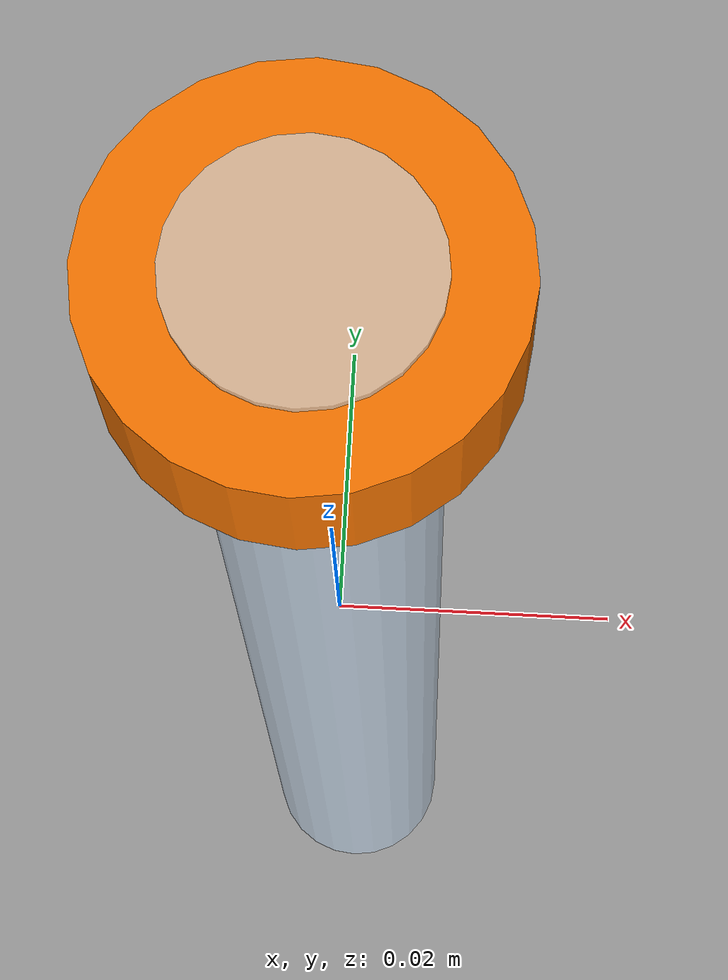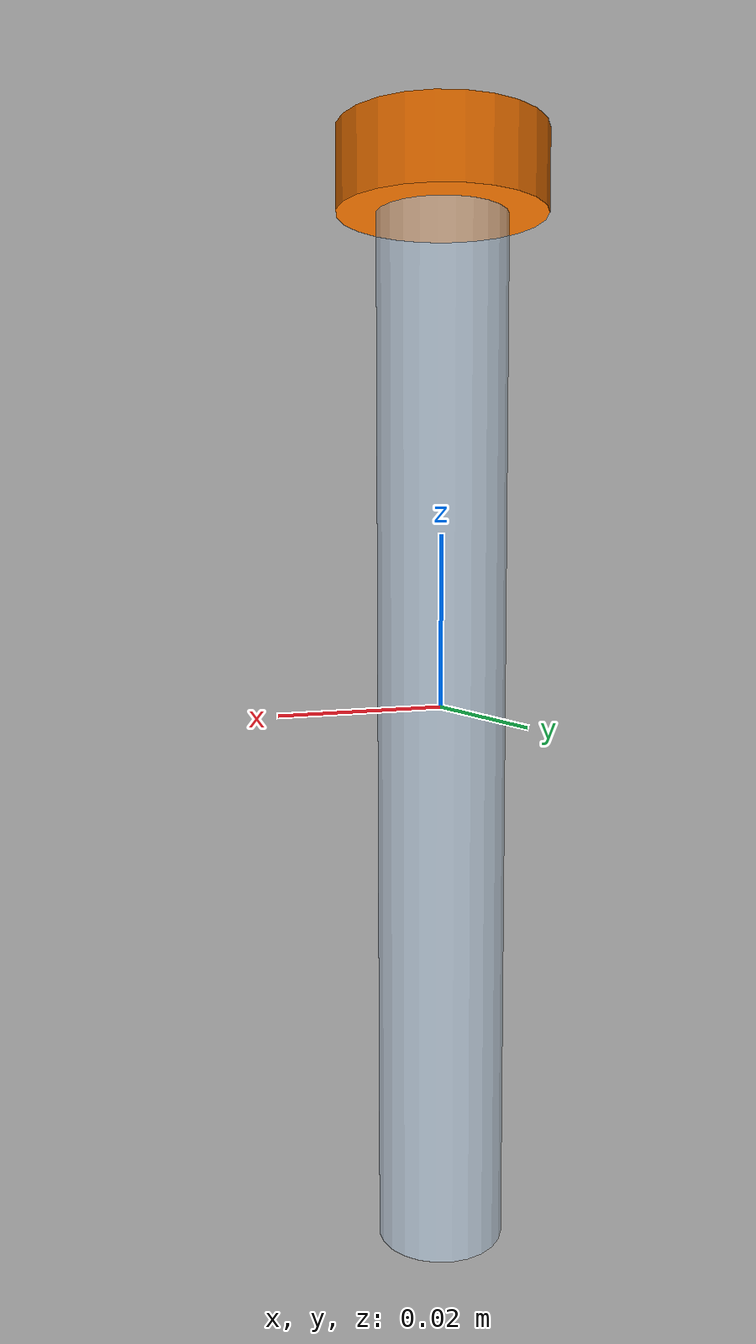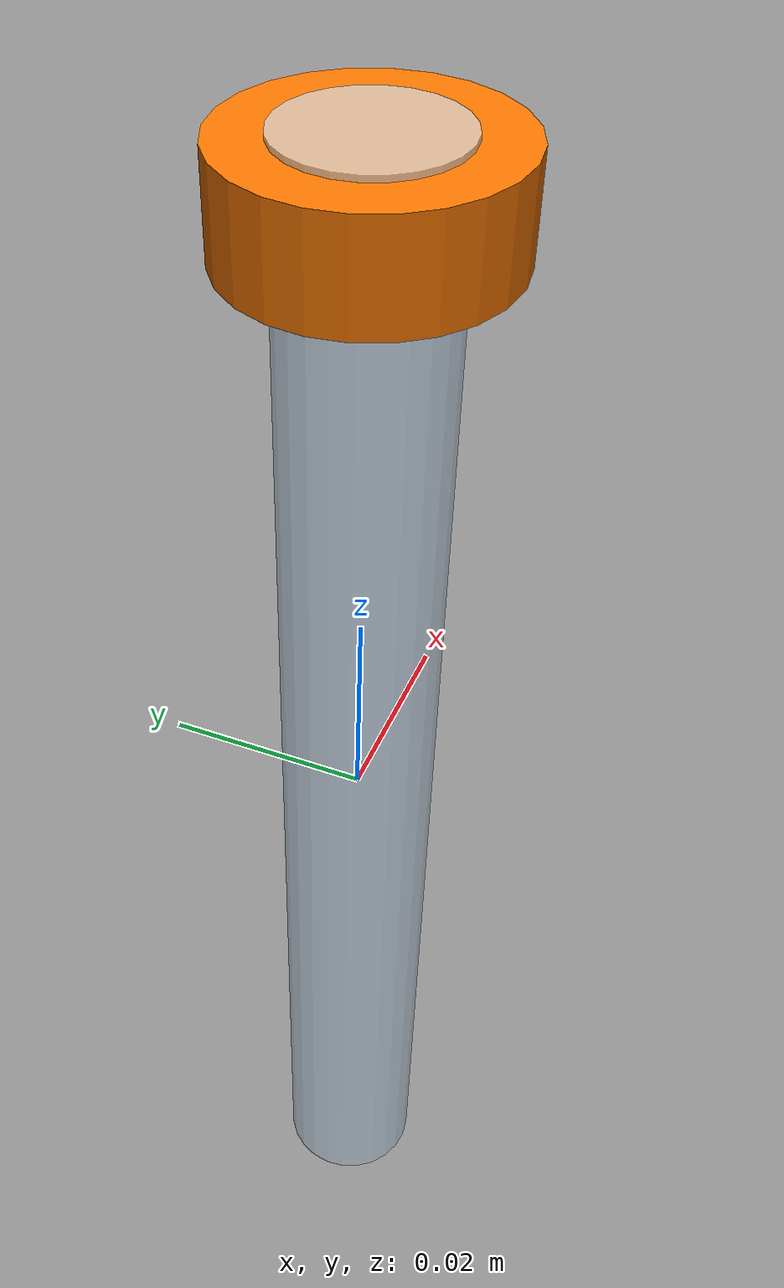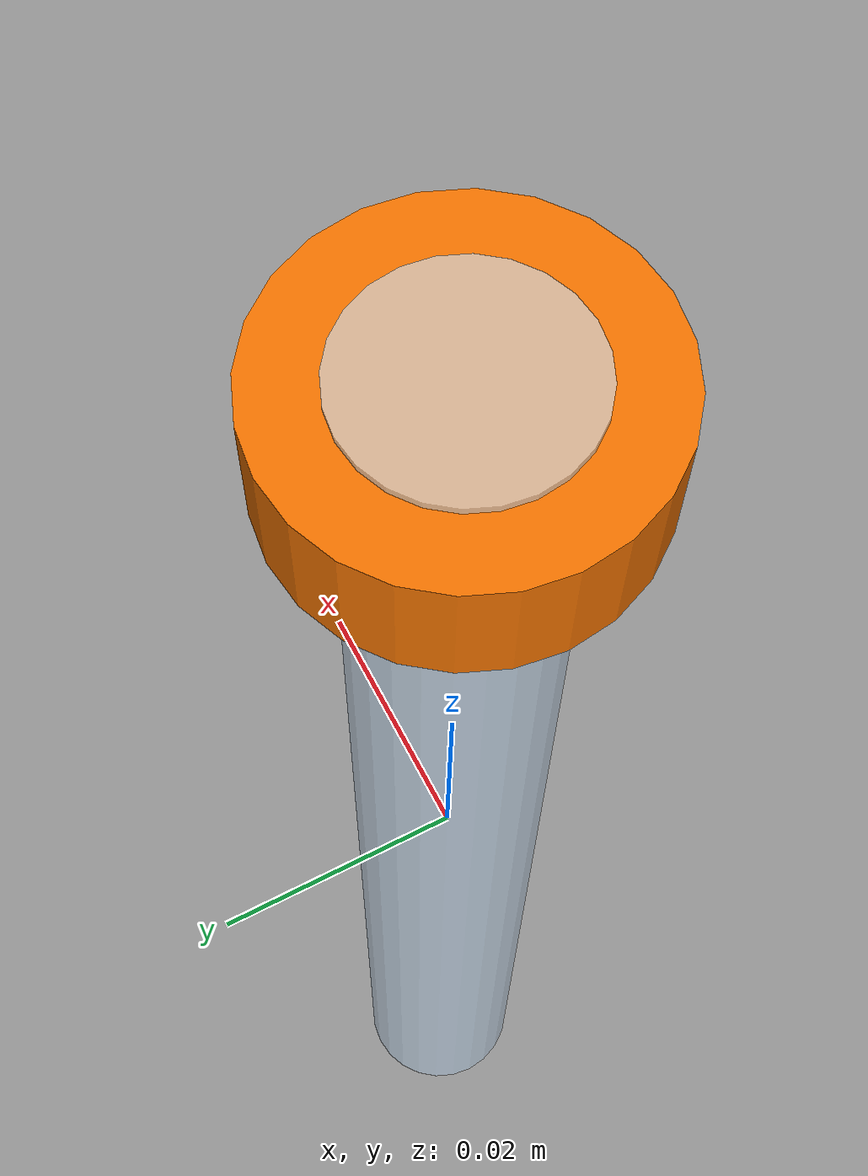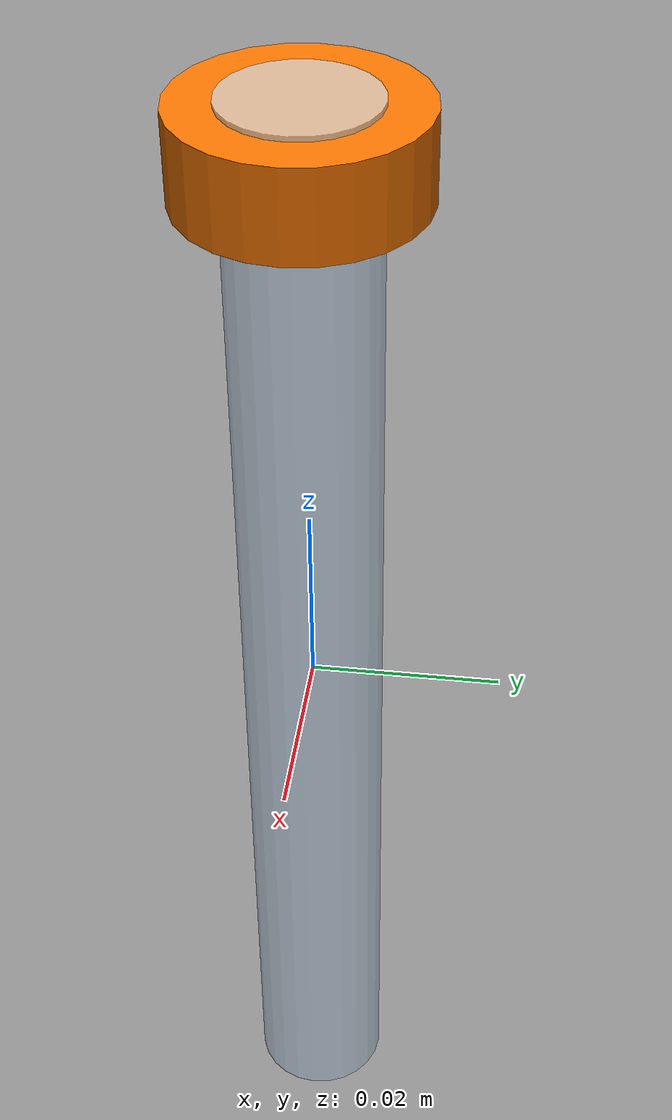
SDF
<?xml version="1.0" ?>
<sdf version="1.5">
  <model name="orange_tube">
    <link name="link">
      <pose>0 0 0 0 0 0</pose>
      <velocity_decay>
        <linear>0.02</linear>
        <angular>0.05</angular>
      </velocity_decay>
      <inertial>
        <mass>0.010</mass>
        <inertia>
          <ixx>1e-5</ixx>
          <ixy>0</ixy>
          <ixz>0</ixz>
          <iyy>1e-5</iyy>
          <iyz>0</iyz>
          <izz>1e-5</izz>
        </inertia>
      </inertial>

      <collision name="collision">
        <geometry>
          <cylinder>
            <radius>0.0075</radius>
            <length>0.13</length>
          </cylinder>
        </geometry>
        <surface>
          <contact>
            <ode>
              <kp>1000000</kp>
              <kd>100</kd>
              <max_vel>0.1</max_vel>
              <min_depth>0.001</min_depth>
            </ode>
          </contact>
          <friction>
            <ode>
              <mu>1.0</mu>
              <mu2>1.0</mu2>
            </ode>
            <torsional>
              <coefficient>1.0</coefficient>
              <use_patch_radius>0</use_patch_radius>
              <surface_radius>0.0075</surface_radius>
            </torsional>
          </friction>
        </surface>
      </collision>

      <visual name="visual">
        <geometry>
          <cylinder>
            <radius>0.0075</radius>
            <length>0.13</length>
          </cylinder>
        </geometry>
        <material>
          <ambient>0.8 0.9 1.0 0.6</ambient>
          <diffuse>0.8 0.9 1.0 0.6</diffuse>
        </material>
      </visual>

      <visual name="visual_cap">
        <pose>0 0 0.060 0 0 0</pose>
        <geometry>
          <cylinder>
            <radius>0.012</radius>
            <length>0.009</length>
          </cylinder>
        </geometry>
        <material>
          <ambient>0.95 0.45 0 1</ambient>
          <diffuse>0.95 0.45 0 1</diffuse>
        </material>
      </visual>

    </link>
  </model>
</sdf>
